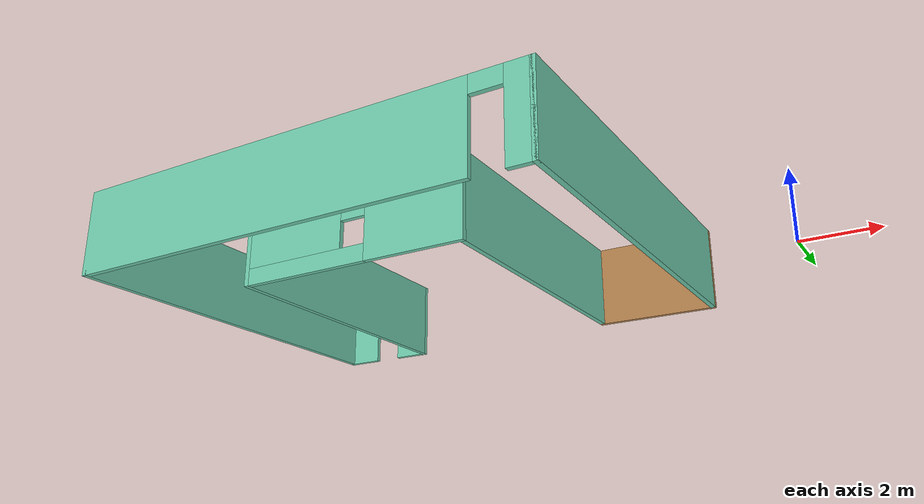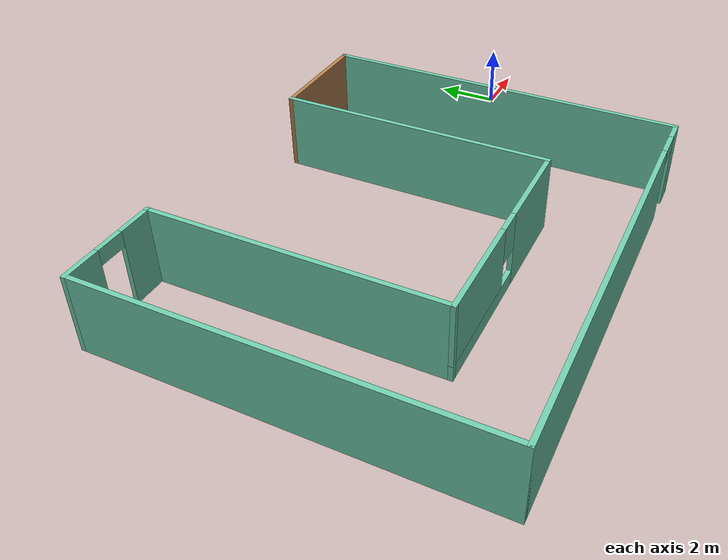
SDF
<?xml version='1.0'?>
<sdf version='1.6'>
  <model name='mybuilding'>
    <pose frame=''>-10.4176 -1.34794 0 0 -0 0</pose>
    <link name='Wall_1'>
      <collision name='Wall_1_Collision'>
        <geometry>
          <box>
            <size>12.25 0.15 2.5</size>
          </box>
        </geometry>
        <pose frame=''>0 0 1.25 0 -0 0</pose>
      </collision>
      <visual name='Wall_1_Visual'>
        <pose frame=''>0 0 1.25 0 -0 0</pose>
        <geometry>
          <box>
            <size>12.25 0.15 2.5</size>
          </box>
        </geometry>
        <material>
          <script>
            <uri>file://media/materials/scripts/gazebo.material</uri>
            <name>Gazebo/Grey</name>
          </script>
          <ambient>0.435294 0.796078 0.67451 1</ambient>
        </material>
        <meta>
          <layer>0</layer>
        </meta>
      </visual>
      <pose frame=''>-6.925 0 0 0 0 -1.5708</pose>
    </link>
    <link name='Wall_2'>
      <pose frame=''>-1e-06 -6.05 0 0 -0 0</pose>
      <visual name='Wall_2_Visual_0'>
        <pose frame=''>-0.838181 0 1.25 0 -0 0</pose>
        <geometry>
          <box>
            <size>12.3236 0.15 2.5</size>
          </box>
        </geometry>
        <material>
          <script>
            <uri>file://media/materials/scripts/gazebo.material</uri>
            <name>Gazebo/Grey</name>
          </script>
          <ambient>0.435294 0.796078 0.67451 1</ambient>
        </material>
        <meta>
          <layer>0</layer>
        </meta>
      </visual>
      <collision name='Wall_2_Collision_0'>
        <geometry>
          <box>
            <size>12.3236 0.15 2.5</size>
          </box>
        </geometry>
        <pose frame=''>-0.838181 0 1.25 0 -0 0</pose>
      </collision>
      <visual name='Wall_2_Visual_1'>
        <pose frame=''>6.61182 0 1.25 0 -0 0</pose>
        <geometry>
          <box>
            <size>0.776362 0.15 2.5</size>
          </box>
        </geometry>
        <material>
          <script>
            <uri>file://media/materials/scripts/gazebo.material</uri>
            <name>Gazebo/Grey</name>
          </script>
          <ambient>0.435294 0.796078 0.67451 1</ambient>
        </material>
        <meta>
          <layer>0</layer>
        </meta>
      </visual>
      <collision name='Wall_2_Collision_1'>
        <geometry>
          <box>
            <size>0.776362 0.15 2.5</size>
          </box>
        </geometry>
        <pose frame=''>6.61182 0 1.25 0 -0 0</pose>
      </collision>
      <visual name='Wall_2_Visual_2'>
        <pose frame=''>5.77364 0 2.25 0 -0 0</pose>
        <geometry>
          <box>
            <size>0.9 0.15 0.5</size>
          </box>
        </geometry>
        <material>
          <script>
            <uri>file://media/materials/scripts/gazebo.material</uri>
            <name>Gazebo/Grey</name>
          </script>
          <ambient>0.435294 0.796078 0.67451 1</ambient>
        </material>
        <meta>
          <layer>0</layer>
        </meta>
      </visual>
      <collision name='Wall_2_Collision_2'>
        <geometry>
          <box>
            <size>0.9 0.15 0.5</size>
          </box>
        </geometry>
        <pose frame=''>5.77364 0 2.25 0 -0 0</pose>
      </collision>
    </link>
    <link name='Wall_3'>
      <collision name='Wall_3_Collision'>
        <geometry>
          <box>
            <size>12 0.15 2.5</size>
          </box>
        </geometry>
        <pose frame=''>0 0 1.25 0 -0 0</pose>
      </collision>
      <visual name='Wall_3_Visual'>
        <pose frame=''>0 0 1.25 0 -0 0</pose>
        <geometry>
          <box>
            <size>12 0.15 2.5</size>
          </box>
        </geometry>
        <material>
          <script>
            <uri>file://media/materials/scripts/gazebo.material</uri>
            <name>Gazebo/Grey</name>
          </script>
          <ambient>0.435294 0.796078 0.67451 1</ambient>
        </material>
        <meta>
          <layer>0</layer>
        </meta>
      </visual>
      <pose frame=''>6.925 -0.125 0 0 -0 1.5708</pose>
    </link>
    <link name='Wall_4'>
      <collision name='Wall_4_Collision'>
        <geometry>
          <box>
            <size>3.75 0.15 2.5</size>
          </box>
        </geometry>
        <pose frame=''>0 0 1.25 0 -0 0</pose>
      </collision>
      <visual name='Wall_4_Visual'>
        <pose frame=''>0 0 1.25 0 -0 0</pose>
        <geometry>
          <box>
            <size>3.75 0.15 2.5</size>
          </box>
        </geometry>
        <material>
          <script>
            <uri>file://media/materials/scripts/gazebo.material</uri>
            <name>Gazebo/Wood</name>
          </script>
          <ambient>0.435294 0.796078 0.67451 1</ambient>
        </material>
        <meta>
          <layer>0</layer>
        </meta>
      </visual>
      <pose frame=''>5.125 5.8 0 0 -0 3.14159</pose>
    </link>
    <link name='Wall_5'>
      <collision name='Wall_5_Collision'>
        <geometry>
          <box>
            <size>9 0.15 2.5</size>
          </box>
        </geometry>
        <pose frame=''>0 0 1.25 0 -0 0</pose>
      </collision>
      <visual name='Wall_5_Visual'>
        <pose frame=''>0 0 1.25 0 -0 0</pose>
        <geometry>
          <box>
            <size>9 0.15 2.5</size>
          </box>
        </geometry>
        <material>
          <script>
            <uri>file://media/materials/scripts/gazebo.material</uri>
            <name>Gazebo/Grey</name>
          </script>
          <ambient>0.435294 0.796078 0.67451 1</ambient>
        </material>
        <meta>
          <layer>0</layer>
        </meta>
      </visual>
      <pose frame=''>3.325 1.375 0 0 0 -1.5708</pose>
    </link>
    <link name='Wall_6'>
      <pose frame=''>-0.225 -3.05 0 0 -0 3.14159</pose>
      <visual name='Wall_6_Visual_0'>
        <pose frame=''>-2.09198 0 1.25 0 -0 0</pose>
        <geometry>
          <box>
            <size>3.06604 0.15 2.5</size>
          </box>
        </geometry>
        <material>
          <script>
            <uri>file://media/materials/scripts/gazebo.material</uri>
            <name>Gazebo/Grey</name>
          </script>
          <ambient>0.435294 0.796078 0.67451 1</ambient>
        </material>
        <meta>
          <layer>0</layer>
        </meta>
      </visual>
      <collision name='Wall_6_Collision_0'>
        <geometry>
          <box>
            <size>3.06604 0.15 2.5</size>
          </box>
        </geometry>
        <pose frame=''>-2.09198 0 1.25 0 -0 0</pose>
      </collision>
      <visual name='Wall_6_Visual_1'>
        <pose frame=''>1.53302 0 0.25 0 -0 0</pose>
        <geometry>
          <box>
            <size>4.18396 0.15 0.5</size>
          </box>
        </geometry>
        <material>
          <script>
            <uri>file://media/materials/scripts/gazebo.material</uri>
            <name>Gazebo/Grey</name>
          </script>
          <ambient>0.435294 0.796078 0.67451 1</ambient>
        </material>
        <meta>
          <layer>0</layer>
        </meta>
      </visual>
      <collision name='Wall_6_Collision_1'>
        <geometry>
          <box>
            <size>4.18396 0.15 0.5</size>
          </box>
        </geometry>
        <pose frame=''>1.53302 0 0.25 0 -0 0</pose>
      </collision>
      <visual name='Wall_6_Visual_2'>
        <pose frame=''>1.93302 0 1.5 0 -0 0</pose>
        <geometry>
          <box>
            <size>3.38396 0.15 2</size>
          </box>
        </geometry>
        <material>
          <script>
            <uri>file://media/materials/scripts/gazebo.material</uri>
            <name>Gazebo/Grey</name>
          </script>
          <ambient>0.435294 0.796078 0.67451 1</ambient>
        </material>
        <meta>
          <layer>0</layer>
        </meta>
      </visual>
      <collision name='Wall_6_Collision_2'>
        <geometry>
          <box>
            <size>3.38396 0.15 2</size>
          </box>
        </geometry>
        <pose frame=''>1.93302 0 1.5 0 -0 0</pose>
      </collision>
      <visual name='Wall_6_Visual_3'>
        <pose frame=''>-0.158962 0 1.9 0 -0 0</pose>
        <geometry>
          <box>
            <size>0.8 0.15 1.2</size>
          </box>
        </geometry>
        <material>
          <script>
            <uri>file://media/materials/scripts/gazebo.material</uri>
            <name>Gazebo/Grey</name>
          </script>
          <ambient>0.435294 0.796078 0.67451 1</ambient>
        </material>
        <meta>
          <layer>0</layer>
        </meta>
      </visual>
      <collision name='Wall_6_Collision_3'>
        <geometry>
          <box>
            <size>0.8 0.15 1.2</size>
          </box>
        </geometry>
        <pose frame=''>-0.158962 0 1.9 0 -0 0</pose>
      </collision>
    </link>
    <link name='Wall_7'>
      <collision name='Wall_7_Collision'>
        <geometry>
          <box>
            <size>9.25 0.15 2.5</size>
          </box>
        </geometry>
        <pose frame=''>0 0 1.25 0 -0 0</pose>
      </collision>
      <visual name='Wall_7_Visual'>
        <pose frame=''>0 0 1.25 0 -0 0</pose>
        <geometry>
          <box>
            <size>9.25 0.15 2.5</size>
          </box>
        </geometry>
        <material>
          <script>
            <uri>file://media/materials/scripts/gazebo.material</uri>
            <name>Gazebo/Grey</name>
          </script>
          <ambient>0.435294 0.796078 0.67451 1</ambient>
        </material>
        <meta>
          <layer>0</layer>
        </meta>
      </visual>
      <pose frame=''>-3.775 1.5 0 0 -0 1.5708</pose>
    </link>
    <link name='Wall_8'>
      <pose frame=''>-5.35 6.05 0 0 0 -3.14159</pose>
      <visual name='Wall_8_Visual_0'>
        <pose frame=''>-1.05357 0 1.25 0 -0 0</pose>
        <geometry>
          <box>
            <size>1.19285 0.15 2.5</size>
          </box>
        </geometry>
        <material>
          <script>
            <uri>file://media/materials/scripts/gazebo.material</uri>
            <name>Gazebo/Grey</name>
          </script>
          <ambient>0.435294 0.796078 0.67451 1</ambient>
        </material>
        <meta>
          <layer>0</layer>
        </meta>
      </visual>
      <collision name='Wall_8_Collision_0'>
        <geometry>
          <box>
            <size>1.19285 0.15 2.5</size>
          </box>
        </geometry>
        <pose frame=''>-1.05357 0 1.25 0 -0 0</pose>
      </collision>
      <visual name='Wall_8_Visual_1'>
        <pose frame=''>1.04643 0 1.25 0 -0 0</pose>
        <geometry>
          <box>
            <size>1.20715 0.15 2.5</size>
          </box>
        </geometry>
        <material>
          <script>
            <uri>file://media/materials/scripts/gazebo.material</uri>
            <name>Gazebo/Grey</name>
          </script>
          <ambient>0.435294 0.796078 0.67451 1</ambient>
        </material>
        <meta>
          <layer>0</layer>
        </meta>
      </visual>
      <collision name='Wall_8_Collision_1'>
        <geometry>
          <box>
            <size>1.20715 0.15 2.5</size>
          </box>
        </geometry>
        <pose frame=''>1.04643 0 1.25 0 -0 0</pose>
      </collision>
      <visual name='Wall_8_Visual_2'>
        <pose frame=''>-0.007148 0 2.25 0 -0 0</pose>
        <geometry>
          <box>
            <size>0.9 0.15 0.5</size>
          </box>
        </geometry>
        <material>
          <script>
            <uri>file://media/materials/scripts/gazebo.material</uri>
            <name>Gazebo/Grey</name>
          </script>
          <ambient>0.435294 0.796078 0.67451 1</ambient>
        </material>
        <meta>
          <layer>0</layer>
        </meta>
      </visual>
      <collision name='Wall_8_Collision_2'>
        <geometry>
          <box>
            <size>0.9 0.15 0.5</size>
          </box>
        </geometry>
        <pose frame=''>-0.007148 0 2.25 0 -0 0</pose>
      </collision>
    </link>
    <static>1</static>
  </model>
</sdf>
